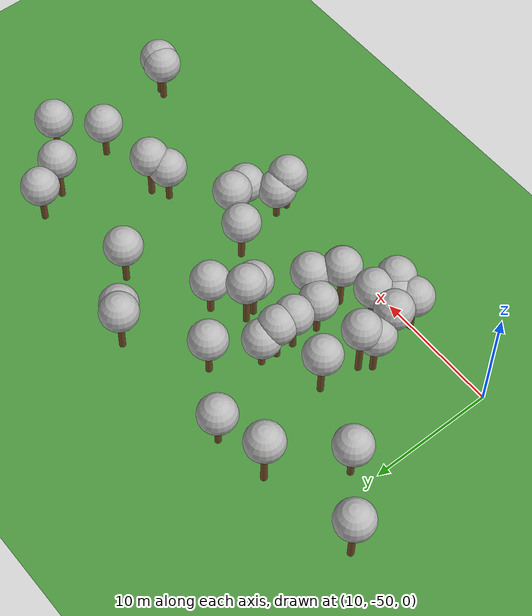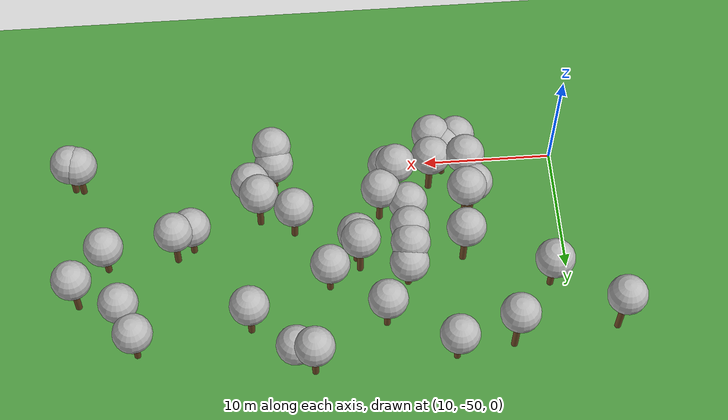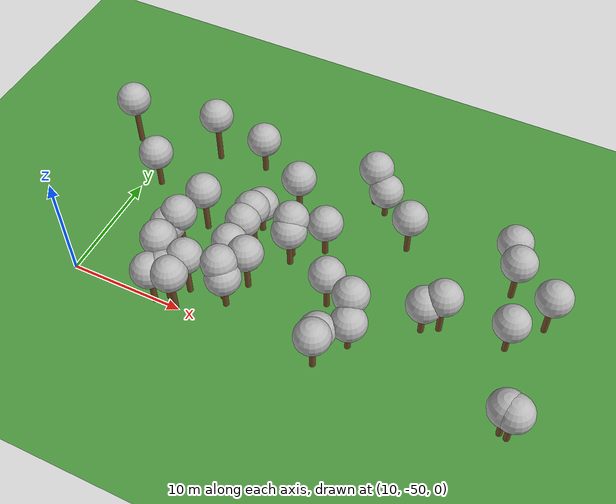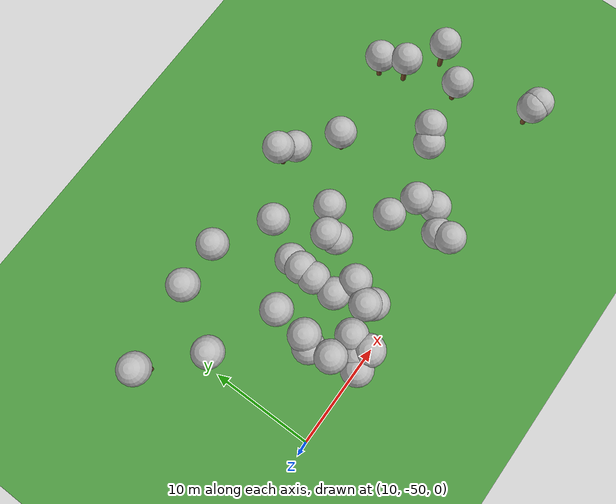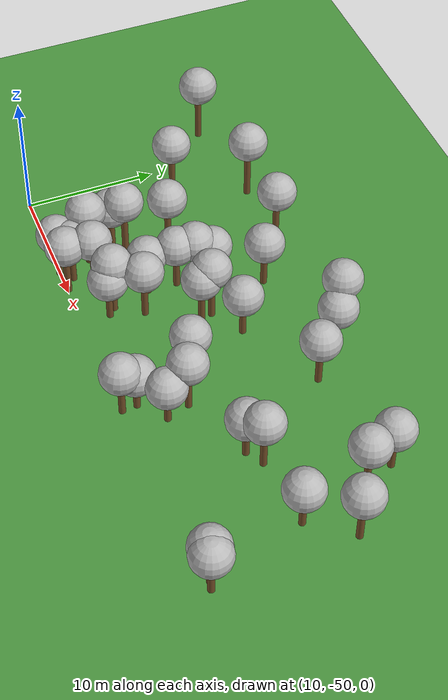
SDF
<sdf version="1.5">
 <world name="default">
  <model name="tree_simple494">
   <static>1</static>
   <link name="link">
    <pose>0 0 0.1 0 -0 0</pose>
    <collision name="collision_trunk">
     <pose>0 0 2 0 -0 0</pose>
     <geometry><cylinder><radius>0.25</radius><length>4</length></cylinder></geometry>
    </collision>
    <collision name="collision_treetop">
     <pose>0 0 5.2 0 -0 0</pose>
     <geometry><sphere><radius>1.5</radius></sphere></geometry>
    </collision>
    <visual name="trunk">
     <pose>0 0 2 0 -0 0</pose>
     <geometry><cylinder><radius>0.25</radius><length>4</length></cylinder></geometry>
     <material>
      <script>
       <uri>model://tree_simple/scripts</uri>
       <uri>model://tree_simple/materials/textures</uri>
       <name>TreeSimple/Trunk</name>
      </script>
     </material>
    </visual>
    <visual name="treetop">
     <pose>0 0 5.2 0 -0 0</pose>
     <geometry><sphere><radius>1.5</radius></sphere></geometry>
     <material>
      <script>
       <uri>model://tree_simple/scripts</uri>
       <uri>model://tree_simple/materials/textures</uri>
       <name>TreeSimple/Treetop</name>
      </script>
     </material>
    </visual>
   </link>
   <pose>39.6521252177 -42.647901406 -1.007992381905501 0 -0 0</pose>
  </model>
  <model name="tree_simple484">
   <static>1</static>
   <link name="link">
    <pose>0 0 0.1 0 -0 0</pose>
    <collision name="collision_trunk">
     <pose>0 0 2 0 -0 0</pose>
     <geometry><cylinder><radius>0.25</radius><length>4</length></cylinder></geometry>
    </collision>
    <collision name="collision_treetop">
     <pose>0 0 5.2 0 -0 0</pose>
     <geometry><sphere><radius>1.5</radius></sphere></geometry>
    </collision>
    <visual name="trunk">
     <pose>0 0 2 0 -0 0</pose>
     <geometry><cylinder><radius>0.25</radius><length>4</length></cylinder></geometry>
     <material>
      <script>
       <uri>model://tree_simple/scripts</uri>
       <uri>model://tree_simple/materials/textures</uri>
       <name>TreeSimple/Trunk</name>
      </script>
     </material>
    </visual>
    <visual name="treetop">
     <pose>0 0 5.2 0 -0 0</pose>
     <geometry><sphere><radius>1.5</radius></sphere></geometry>
     <material>
      <script>
       <uri>model://tree_simple/scripts</uri>
       <uri>model://tree_simple/materials/textures</uri>
       <name>TreeSimple/Treetop</name>
      </script>
     </material>
    </visual>
   </link>
   <pose>19.8605088225 -47.9062304077 -0.7585750219698935 0 -0 0</pose>
  </model>
  <model name="tree_simple464">
   <static>1</static>
   <link name="link">
    <pose>0 0 0.1 0 -0 0</pose>
    <collision name="collision_trunk">
     <pose>0 0 2 0 -0 0</pose>
     <geometry><cylinder><radius>0.25</radius><length>4</length></cylinder></geometry>
    </collision>
    <collision name="collision_treetop">
     <pose>0 0 5.2 0 -0 0</pose>
     <geometry><sphere><radius>1.5</radius></sphere></geometry>
    </collision>
    <visual name="trunk">
     <pose>0 0 2 0 -0 0</pose>
     <geometry><cylinder><radius>0.25</radius><length>4</length></cylinder></geometry>
     <material>
      <script>
       <uri>model://tree_simple/scripts</uri>
       <uri>model://tree_simple/materials/textures</uri>
       <name>TreeSimple/Trunk</name>
      </script>
     </material>
    </visual>
    <visual name="treetop">
     <pose>0 0 5.2 0 -0 0</pose>
     <geometry><sphere><radius>1.5</radius></sphere></geometry>
     <material>
      <script>
       <uri>model://tree_simple/scripts</uri>
       <uri>model://tree_simple/materials/textures</uri>
       <name>TreeSimple/Treetop</name>
      </script>
     </material>
    </visual>
   </link>
   <pose>18.697132214 -49.1923863075 -1.3498016305243221 0 -0 0</pose>
  </model>
  <model name="tree_simple456">
   <static>1</static>
   <link name="link">
    <pose>0 0 0.1 0 -0 0</pose>
    <collision name="collision_trunk">
     <pose>0 0 2 0 -0 0</pose>
     <geometry><cylinder><radius>0.25</radius><length>4</length></cylinder></geometry>
    </collision>
    <collision name="collision_treetop">
     <pose>0 0 5.2 0 -0 0</pose>
     <geometry><sphere><radius>1.5</radius></sphere></geometry>
    </collision>
    <visual name="trunk">
     <pose>0 0 2 0 -0 0</pose>
     <geometry><cylinder><radius>0.25</radius><length>4</length></cylinder></geometry>
     <material>
      <script>
       <uri>model://tree_simple/scripts</uri>
       <uri>model://tree_simple/materials/textures</uri>
       <name>TreeSimple/Trunk</name>
      </script>
     </material>
    </visual>
    <visual name="treetop">
     <pose>0 0 5.2 0 -0 0</pose>
     <geometry><sphere><radius>1.5</radius></sphere></geometry>
     <material>
      <script>
       <uri>model://tree_simple/scripts</uri>
       <uri>model://tree_simple/materials/textures</uri>
       <name>TreeSimple/Treetop</name>
      </script>
     </material>
    </visual>
   </link>
   <pose>23.2076568155 -47.8591592767 -1.7004534067102877 0 -0 0</pose>
  </model>
  <model name="tree_simple430">
   <static>1</static>
   <link name="link">
    <pose>0 0 0.1 0 -0 0</pose>
    <collision name="collision_trunk">
     <pose>0 0 2 0 -0 0</pose>
     <geometry><cylinder><radius>0.25</radius><length>4</length></cylinder></geometry>
    </collision>
    <collision name="collision_treetop">
     <pose>0 0 5.2 0 -0 0</pose>
     <geometry><sphere><radius>1.5</radius></sphere></geometry>
    </collision>
    <visual name="trunk">
     <pose>0 0 2 0 -0 0</pose>
     <geometry><cylinder><radius>0.25</radius><length>4</length></cylinder></geometry>
     <material>
      <script>
       <uri>model://tree_simple/scripts</uri>
       <uri>model://tree_simple/materials/textures</uri>
       <name>TreeSimple/Trunk</name>
      </script>
     </material>
    </visual>
    <visual name="treetop">
     <pose>0 0 5.2 0 -0 0</pose>
     <geometry><sphere><radius>1.5</radius></sphere></geometry>
     <material>
      <script>
       <uri>model://tree_simple/scripts</uri>
       <uri>model://tree_simple/materials/textures</uri>
       <name>TreeSimple/Treetop</name>
      </script>
     </material>
    </visual>
   </link>
   <pose>19.6675265043 -49.8829362896 -0.8286591054720756 0 -0 0</pose>
  </model>
  <model name="tree_simple427">
   <static>1</static>
   <link name="link">
    <pose>0 0 0.1 0 -0 0</pose>
    <collision name="collision_trunk">
     <pose>0 0 2 0 -0 0</pose>
     <geometry><cylinder><radius>0.25</radius><length>4</length></cylinder></geometry>
    </collision>
    <collision name="collision_treetop">
     <pose>0 0 5.2 0 -0 0</pose>
     <geometry><sphere><radius>1.5</radius></sphere></geometry>
    </collision>
    <visual name="trunk">
     <pose>0 0 2 0 -0 0</pose>
     <geometry><cylinder><radius>0.25</radius><length>4</length></cylinder></geometry>
     <material>
      <script>
       <uri>model://tree_simple/scripts</uri>
       <uri>model://tree_simple/materials/textures</uri>
       <name>TreeSimple/Trunk</name>
      </script>
     </material>
    </visual>
    <visual name="treetop">
     <pose>0 0 5.2 0 -0 0</pose>
     <geometry><sphere><radius>1.5</radius></sphere></geometry>
     <material>
      <script>
       <uri>model://tree_simple/scripts</uri>
       <uri>model://tree_simple/materials/textures</uri>
       <name>TreeSimple/Treetop</name>
      </script>
     </material>
    </visual>
   </link>
   <pose>17.8220319496 -41.3749782968 -0.6419685866263911 0 -0 0</pose>
  </model>
  <model name="tree_simple423">
   <static>1</static>
   <link name="link">
    <pose>0 0 0.1 0 -0 0</pose>
    <collision name="collision_trunk">
     <pose>0 0 2 0 -0 0</pose>
     <geometry><cylinder><radius>0.25</radius><length>4</length></cylinder></geometry>
    </collision>
    <collision name="collision_treetop">
     <pose>0 0 5.2 0 -0 0</pose>
     <geometry><sphere><radius>1.5</radius></sphere></geometry>
    </collision>
    <visual name="trunk">
     <pose>0 0 2 0 -0 0</pose>
     <geometry><cylinder><radius>0.25</radius><length>4</length></cylinder></geometry>
     <material>
      <script>
       <uri>model://tree_simple/scripts</uri>
       <uri>model://tree_simple/materials/textures</uri>
       <name>TreeSimple/Trunk</name>
      </script>
     </material>
    </visual>
    <visual name="treetop">
     <pose>0 0 5.2 0 -0 0</pose>
     <geometry><sphere><radius>1.5</radius></sphere></geometry>
     <material>
      <script>
       <uri>model://tree_simple/scripts</uri>
       <uri>model://tree_simple/materials/textures</uri>
       <name>TreeSimple/Treetop</name>
      </script>
     </material>
    </visual>
   </link>
   <pose>22.6666902857 -47.3463091406 -0.7062640140421014 0 -0 0</pose>
  </model>
  <model name="tree_simple422">
   <static>1</static>
   <link name="link">
    <pose>0 0 0.1 0 -0 0</pose>
    <collision name="collision_trunk">
     <pose>0 0 2 0 -0 0</pose>
     <geometry><cylinder><radius>0.25</radius><length>4</length></cylinder></geometry>
    </collision>
    <collision name="collision_treetop">
     <pose>0 0 5.2 0 -0 0</pose>
     <geometry><sphere><radius>1.5</radius></sphere></geometry>
    </collision>
    <visual name="trunk">
     <pose>0 0 2 0 -0 0</pose>
     <geometry><cylinder><radius>0.25</radius><length>4</length></cylinder></geometry>
     <material>
      <script>
       <uri>model://tree_simple/scripts</uri>
       <uri>model://tree_simple/materials/textures</uri>
       <name>TreeSimple/Trunk</name>
      </script>
     </material>
    </visual>
    <visual name="treetop">
     <pose>0 0 5.2 0 -0 0</pose>
     <geometry><sphere><radius>1.5</radius></sphere></geometry>
     <material>
      <script>
       <uri>model://tree_simple/scripts</uri>
       <uri>model://tree_simple/materials/textures</uri>
       <name>TreeSimple/Treetop</name>
      </script>
     </material>
    </visual>
   </link>
   <pose>46.9340594409 -49.3003062786 -1.5132082486776353 0 -0 0</pose>
  </model>
  <model name="tree_simple406">
   <static>1</static>
   <link name="link">
    <pose>0 0 0.1 0 -0 0</pose>
    <collision name="collision_trunk">
     <pose>0 0 2 0 -0 0</pose>
     <geometry><cylinder><radius>0.25</radius><length>4</length></cylinder></geometry>
    </collision>
    <collision name="collision_treetop">
     <pose>0 0 5.2 0 -0 0</pose>
     <geometry><sphere><radius>1.5</radius></sphere></geometry>
    </collision>
    <visual name="trunk">
     <pose>0 0 2 0 -0 0</pose>
     <geometry><cylinder><radius>0.25</radius><length>4</length></cylinder></geometry>
     <material>
      <script>
       <uri>model://tree_simple/scripts</uri>
       <uri>model://tree_simple/materials/textures</uri>
       <name>TreeSimple/Trunk</name>
      </script>
     </material>
    </visual>
    <visual name="treetop">
     <pose>0 0 5.2 0 -0 0</pose>
     <geometry><sphere><radius>1.5</radius></sphere></geometry>
     <material>
      <script>
       <uri>model://tree_simple/scripts</uri>
       <uri>model://tree_simple/materials/textures</uri>
       <name>TreeSimple/Treetop</name>
      </script>
     </material>
    </visual>
   </link>
   <pose>31.8934217089 -48.8403630258 -2.1316052605066784 0 -0 0</pose>
  </model>
  <model name="tree_simple399">
   <static>1</static>
   <link name="link">
    <pose>0 0 0.1 0 -0 0</pose>
    <collision name="collision_trunk">
     <pose>0 0 2 0 -0 0</pose>
     <geometry><cylinder><radius>0.25</radius><length>4</length></cylinder></geometry>
    </collision>
    <collision name="collision_treetop">
     <pose>0 0 5.2 0 -0 0</pose>
     <geometry><sphere><radius>1.5</radius></sphere></geometry>
    </collision>
    <visual name="trunk">
     <pose>0 0 2 0 -0 0</pose>
     <geometry><cylinder><radius>0.25</radius><length>4</length></cylinder></geometry>
     <material>
      <script>
       <uri>model://tree_simple/scripts</uri>
       <uri>model://tree_simple/materials/textures</uri>
       <name>TreeSimple/Trunk</name>
      </script>
     </material>
    </visual>
    <visual name="treetop">
     <pose>0 0 5.2 0 -0 0</pose>
     <geometry><sphere><radius>1.5</radius></sphere></geometry>
     <material>
      <script>
       <uri>model://tree_simple/scripts</uri>
       <uri>model://tree_simple/materials/textures</uri>
       <name>TreeSimple/Treetop</name>
      </script>
     </material>
    </visual>
   </link>
   <pose>28.1463540184 -39.4724503771 -1.5942342966923435 0 -0 0</pose>
  </model>
  <model name="tree_simple362">
   <static>1</static>
   <link name="link">
    <pose>0 0 0.1 0 -0 0</pose>
    <collision name="collision_trunk">
     <pose>0 0 2 0 -0 0</pose>
     <geometry><cylinder><radius>0.25</radius><length>4</length></cylinder></geometry>
    </collision>
    <collision name="collision_treetop">
     <pose>0 0 5.2 0 -0 0</pose>
     <geometry><sphere><radius>1.5</radius></sphere></geometry>
    </collision>
    <visual name="trunk">
     <pose>0 0 2 0 -0 0</pose>
     <geometry><cylinder><radius>0.25</radius><length>4</length></cylinder></geometry>
     <material>
      <script>
       <uri>model://tree_simple/scripts</uri>
       <uri>model://tree_simple/materials/textures</uri>
       <name>TreeSimple/Trunk</name>
      </script>
     </material>
    </visual>
    <visual name="treetop">
     <pose>0 0 5.2 0 -0 0</pose>
     <geometry><sphere><radius>1.5</radius></sphere></geometry>
     <material>
      <script>
       <uri>model://tree_simple/scripts</uri>
       <uri>model://tree_simple/materials/textures</uri>
       <name>TreeSimple/Treetop</name>
      </script>
     </material>
    </visual>
   </link>
   <pose>44.985496552 -42.1503793978 -1.7018055091399555 0 -0 0</pose>
  </model>
  <model name="tree_simple355">
   <static>1</static>
   <link name="link">
    <pose>0 0 0.1 0 -0 0</pose>
    <collision name="collision_trunk">
     <pose>0 0 2 0 -0 0</pose>
     <geometry><cylinder><radius>0.25</radius><length>4</length></cylinder></geometry>
    </collision>
    <collision name="collision_treetop">
     <pose>0 0 5.2 0 -0 0</pose>
     <geometry><sphere><radius>1.5</radius></sphere></geometry>
    </collision>
    <visual name="trunk">
     <pose>0 0 2 0 -0 0</pose>
     <geometry><cylinder><radius>0.25</radius><length>4</length></cylinder></geometry>
     <material>
      <script>
       <uri>model://tree_simple/scripts</uri>
       <uri>model://tree_simple/materials/textures</uri>
       <name>TreeSimple/Trunk</name>
      </script>
     </material>
    </visual>
    <visual name="treetop">
     <pose>0 0 5.2 0 -0 0</pose>
     <geometry><sphere><radius>1.5</radius></sphere></geometry>
     <material>
      <script>
       <uri>model://tree_simple/scripts</uri>
       <uri>model://tree_simple/materials/textures</uri>
       <name>TreeSimple/Treetop</name>
      </script>
     </material>
    </visual>
   </link>
   <pose>25.975286884 -41.7874404901 -1.210287855517367 0 -0 0</pose>
  </model>
  <model name="tree_simple329">
   <static>1</static>
   <link name="link">
    <pose>0 0 0.1 0 -0 0</pose>
    <collision name="collision_trunk">
     <pose>0 0 2 0 -0 0</pose>
     <geometry><cylinder><radius>0.25</radius><length>4</length></cylinder></geometry>
    </collision>
    <collision name="collision_treetop">
     <pose>0 0 5.2 0 -0 0</pose>
     <geometry><sphere><radius>1.5</radius></sphere></geometry>
    </collision>
    <visual name="trunk">
     <pose>0 0 2 0 -0 0</pose>
     <geometry><cylinder><radius>0.25</radius><length>4</length></cylinder></geometry>
     <material>
      <script>
       <uri>model://tree_simple/scripts</uri>
       <uri>model://tree_simple/materials/textures</uri>
       <name>TreeSimple/Trunk</name>
      </script>
     </material>
    </visual>
    <visual name="treetop">
     <pose>0 0 5.2 0 -0 0</pose>
     <geometry><sphere><radius>1.5</radius></sphere></geometry>
     <material>
      <script>
       <uri>model://tree_simple/scripts</uri>
       <uri>model://tree_simple/materials/textures</uri>
       <name>TreeSimple/Treetop</name>
      </script>
     </material>
    </visual>
   </link>
   <pose>22.038430334 -40.7859522783 -1.3749086138204623 0 -0 0</pose>
  </model>
  <model name="tree_simple300">
   <static>1</static>
   <link name="link">
    <pose>0 0 0.1 0 -0 0</pose>
    <collision name="collision_trunk">
     <pose>0 0 2 0 -0 0</pose>
     <geometry><cylinder><radius>0.25</radius><length>4</length></cylinder></geometry>
    </collision>
    <collision name="collision_treetop">
     <pose>0 0 5.2 0 -0 0</pose>
     <geometry><sphere><radius>1.5</radius></sphere></geometry>
    </collision>
    <visual name="trunk">
     <pose>0 0 2 0 -0 0</pose>
     <geometry><cylinder><radius>0.25</radius><length>4</length></cylinder></geometry>
     <material>
      <script>
       <uri>model://tree_simple/scripts</uri>
       <uri>model://tree_simple/materials/textures</uri>
       <name>TreeSimple/Trunk</name>
      </script>
     </material>
    </visual>
    <visual name="treetop">
     <pose>0 0 5.2 0 -0 0</pose>
     <geometry><sphere><radius>1.5</radius></sphere></geometry>
     <material>
      <script>
       <uri>model://tree_simple/scripts</uri>
       <uri>model://tree_simple/materials/textures</uri>
       <name>TreeSimple/Treetop</name>
      </script>
     </material>
    </visual>
   </link>
   <pose>34.2893754597 -36.2522401159 -1.2069792863695539 0 -0 0</pose>
  </model>
  <model name="tree_simple281">
   <static>1</static>
   <link name="link">
    <pose>0 0 0.1 0 -0 0</pose>
    <collision name="collision_trunk">
     <pose>0 0 2 0 -0 0</pose>
     <geometry><cylinder><radius>0.25</radius><length>4</length></cylinder></geometry>
    </collision>
    <collision name="collision_treetop">
     <pose>0 0 5.2 0 -0 0</pose>
     <geometry><sphere><radius>1.5</radius></sphere></geometry>
    </collision>
    <visual name="trunk">
     <pose>0 0 2 0 -0 0</pose>
     <geometry><cylinder><radius>0.25</radius><length>4</length></cylinder></geometry>
     <material>
      <script>
       <uri>model://tree_simple/scripts</uri>
       <uri>model://tree_simple/materials/textures</uri>
       <name>TreeSimple/Trunk</name>
      </script>
     </material>
    </visual>
    <visual name="treetop">
     <pose>0 0 5.2 0 -0 0</pose>
     <geometry><sphere><radius>1.5</radius></sphere></geometry>
     <material>
      <script>
       <uri>model://tree_simple/scripts</uri>
       <uri>model://tree_simple/materials/textures</uri>
       <name>TreeSimple/Treetop</name>
      </script>
     </material>
    </visual>
   </link>
   <pose>17.7631793605 -49.9798329039 -1.3397394094577435 0 -0 0</pose>
  </model>
  <model name="tree_simple280">
   <static>1</static>
   <link name="link">
    <pose>0 0 0.1 0 -0 0</pose>
    <collision name="collision_trunk">
     <pose>0 0 2 0 -0 0</pose>
     <geometry><cylinder><radius>0.25</radius><length>4</length></cylinder></geometry>
    </collision>
    <collision name="collision_treetop">
     <pose>0 0 5.2 0 -0 0</pose>
     <geometry><sphere><radius>1.5</radius></sphere></geometry>
    </collision>
    <visual name="trunk">
     <pose>0 0 2 0 -0 0</pose>
     <geometry><cylinder><radius>0.25</radius><length>4</length></cylinder></geometry>
     <material>
      <script>
       <uri>model://tree_simple/scripts</uri>
       <uri>model://tree_simple/materials/textures</uri>
       <name>TreeSimple/Trunk</name>
      </script>
     </material>
    </visual>
    <visual name="treetop">
     <pose>0 0 5.2 0 -0 0</pose>
     <geometry><sphere><radius>1.5</radius></sphere></geometry>
     <material>
      <script>
       <uri>model://tree_simple/scripts</uri>
       <uri>model://tree_simple/materials/textures</uri>
       <name>TreeSimple/Treetop</name>
      </script>
     </material>
    </visual>
   </link>
   <pose>42.8499474232 -34.7520527621 -1.5146082432369 0 -0 0</pose>
  </model>
  <model name="tree_simple261">
   <static>1</static>
   <link name="link">
    <pose>0 0 0.1 0 -0 0</pose>
    <collision name="collision_trunk">
     <pose>0 0 2 0 -0 0</pose>
     <geometry><cylinder><radius>0.25</radius><length>4</length></cylinder></geometry>
    </collision>
    <collision name="collision_treetop">
     <pose>0 0 5.2 0 -0 0</pose>
     <geometry><sphere><radius>1.5</radius></sphere></geometry>
    </collision>
    <visual name="trunk">
     <pose>0 0 2 0 -0 0</pose>
     <geometry><cylinder><radius>0.25</radius><length>4</length></cylinder></geometry>
     <material>
      <script>
       <uri>model://tree_simple/scripts</uri>
       <uri>model://tree_simple/materials/textures</uri>
       <name>TreeSimple/Trunk</name>
      </script>
     </material>
    </visual>
    <visual name="treetop">
     <pose>0 0 5.2 0 -0 0</pose>
     <geometry><sphere><radius>1.5</radius></sphere></geometry>
     <material>
      <script>
       <uri>model://tree_simple/scripts</uri>
       <uri>model://tree_simple/materials/textures</uri>
       <name>TreeSimple/Treetop</name>
      </script>
     </material>
    </visual>
   </link>
   <pose>33.7827414367 -47.2764136507 -2.028757432966681 0 -0 0</pose>
  </model>
  <model name="tree_simple233">
   <static>1</static>
   <link name="link">
    <pose>0 0 0.1 0 -0 0</pose>
    <collision name="collision_trunk">
     <pose>0 0 2 0 -0 0</pose>
     <geometry><cylinder><radius>0.25</radius><length>4</length></cylinder></geometry>
    </collision>
    <collision name="collision_treetop">
     <pose>0 0 5.2 0 -0 0</pose>
     <geometry><sphere><radius>1.5</radius></sphere></geometry>
    </collision>
    <visual name="trunk">
     <pose>0 0 2 0 -0 0</pose>
     <geometry><cylinder><radius>0.25</radius><length>4</length></cylinder></geometry>
     <material>
      <script>
       <uri>model://tree_simple/scripts</uri>
       <uri>model://tree_simple/materials/textures</uri>
       <name>TreeSimple/Trunk</name>
      </script>
     </material>
    </visual>
    <visual name="treetop">
     <pose>0 0 5.2 0 -0 0</pose>
     <geometry><sphere><radius>1.5</radius></sphere></geometry>
     <material>
      <script>
       <uri>model://tree_simple/scripts</uri>
       <uri>model://tree_simple/materials/textures</uri>
       <name>TreeSimple/Treetop</name>
      </script>
     </material>
    </visual>
   </link>
   <pose>21.929125889 -44.4760714013 -1.6212439924348268 0 -0 0</pose>
  </model>
  <model name="tree_simple225">
   <static>1</static>
   <link name="link">
    <pose>0 0 0.1 0 -0 0</pose>
    <collision name="collision_trunk">
     <pose>0 0 2 0 -0 0</pose>
     <geometry><cylinder><radius>0.25</radius><length>4</length></cylinder></geometry>
    </collision>
    <collision name="collision_treetop">
     <pose>0 0 5.2 0 -0 0</pose>
     <geometry><sphere><radius>1.5</radius></sphere></geometry>
    </collision>
    <visual name="trunk">
     <pose>0 0 2 0 -0 0</pose>
     <geometry><cylinder><radius>0.25</radius><length>4</length></cylinder></geometry>
     <material>
      <script>
       <uri>model://tree_simple/scripts</uri>
       <uri>model://tree_simple/materials/textures</uri>
       <name>TreeSimple/Trunk</name>
      </script>
     </material>
    </visual>
    <visual name="treetop">
     <pose>0 0 5.2 0 -0 0</pose>
     <geometry><sphere><radius>1.5</radius></sphere></geometry>
     <material>
      <script>
       <uri>model://tree_simple/scripts</uri>
       <uri>model://tree_simple/materials/textures</uri>
       <name>TreeSimple/Treetop</name>
      </script>
     </material>
    </visual>
   </link>
   <pose>30.586439973 -44.3528824328 -1.2935662439790152 0 -0 0</pose>
  </model>
  <model name="tree_simple215">
   <static>1</static>
   <link name="link">
    <pose>0 0 0.1 0 -0 0</pose>
    <collision name="collision_trunk">
     <pose>0 0 2 0 -0 0</pose>
     <geometry><cylinder><radius>0.25</radius><length>4</length></cylinder></geometry>
    </collision>
    <collision name="collision_treetop">
     <pose>0 0 5.2 0 -0 0</pose>
     <geometry><sphere><radius>1.5</radius></sphere></geometry>
    </collision>
    <visual name="trunk">
     <pose>0 0 2 0 -0 0</pose>
     <geometry><cylinder><radius>0.25</radius><length>4</length></cylinder></geometry>
     <material>
      <script>
       <uri>model://tree_simple/scripts</uri>
       <uri>model://tree_simple/materials/textures</uri>
       <name>TreeSimple/Trunk</name>
      </script>
     </material>
    </visual>
    <visual name="treetop">
     <pose>0 0 5.2 0 -0 0</pose>
     <geometry><sphere><radius>1.5</radius></sphere></geometry>
     <material>
      <script>
       <uri>model://tree_simple/scripts</uri>
       <uri>model://tree_simple/materials/textures</uri>
       <name>TreeSimple/Treetop</name>
      </script>
     </material>
    </visual>
   </link>
   <pose>6.8108440726 -34.7298391892 -0.27884321710814985 0 -0 0</pose>
  </model>
  <model name="tree_simple207">
   <static>1</static>
   <link name="link">
    <pose>0 0 0.1 0 -0 0</pose>
    <collision name="collision_trunk">
     <pose>0 0 2 0 -0 0</pose>
     <geometry><cylinder><radius>0.25</radius><length>4</length></cylinder></geometry>
    </collision>
    <collision name="collision_treetop">
     <pose>0 0 5.2 0 -0 0</pose>
     <geometry><sphere><radius>1.5</radius></sphere></geometry>
    </collision>
    <visual name="trunk">
     <pose>0 0 2 0 -0 0</pose>
     <geometry><cylinder><radius>0.25</radius><length>4</length></cylinder></geometry>
     <material>
      <script>
       <uri>model://tree_simple/scripts</uri>
       <uri>model://tree_simple/materials/textures</uri>
       <name>TreeSimple/Trunk</name>
      </script>
     </material>
    </visual>
    <visual name="treetop">
     <pose>0 0 5.2 0 -0 0</pose>
     <geometry><sphere><radius>1.5</radius></sphere></geometry>
     <material>
      <script>
       <uri>model://tree_simple/scripts</uri>
       <uri>model://tree_simple/materials/textures</uri>
       <name>TreeSimple/Treetop</name>
      </script>
     </material>
    </visual>
   </link>
   <pose>29.7171513821 -32.5331350523 -0.9764253071942636 0 -0 0</pose>
  </model>
  <model name="tree_simple202">
   <static>1</static>
   <link name="link">
    <pose>0 0 0.1 0 -0 0</pose>
    <collision name="collision_trunk">
     <pose>0 0 2 0 -0 0</pose>
     <geometry><cylinder><radius>0.25</radius><length>4</length></cylinder></geometry>
    </collision>
    <collision name="collision_treetop">
     <pose>0 0 5.2 0 -0 0</pose>
     <geometry><sphere><radius>1.5</radius></sphere></geometry>
    </collision>
    <visual name="trunk">
     <pose>0 0 2 0 -0 0</pose>
     <geometry><cylinder><radius>0.25</radius><length>4</length></cylinder></geometry>
     <material>
      <script>
       <uri>model://tree_simple/scripts</uri>
       <uri>model://tree_simple/materials/textures</uri>
       <name>TreeSimple/Trunk</name>
      </script>
     </material>
    </visual>
    <visual name="treetop">
     <pose>0 0 5.2 0 -0 0</pose>
     <geometry><sphere><radius>1.5</radius></sphere></geometry>
     <material>
      <script>
       <uri>model://tree_simple/scripts</uri>
       <uri>model://tree_simple/materials/textures</uri>
       <name>TreeSimple/Treetop</name>
      </script>
     </material>
    </visual>
   </link>
   <pose>33.1651643467 -45.5260416914 -0.965114586104809 0 -0 0</pose>
  </model>
  <model name="tree_simple182">
   <static>1</static>
   <link name="link">
    <pose>0 0 0.1 0 -0 0</pose>
    <collision name="collision_trunk">
     <pose>0 0 2 0 -0 0</pose>
     <geometry><cylinder><radius>0.25</radius><length>4</length></cylinder></geometry>
    </collision>
    <collision name="collision_treetop">
     <pose>0 0 5.2 0 -0 0</pose>
     <geometry><sphere><radius>1.5</radius></sphere></geometry>
    </collision>
    <visual name="trunk">
     <pose>0 0 2 0 -0 0</pose>
     <geometry><cylinder><radius>0.25</radius><length>4</length></cylinder></geometry>
     <material>
      <script>
       <uri>model://tree_simple/scripts</uri>
       <uri>model://tree_simple/materials/textures</uri>
       <name>TreeSimple/Trunk</name>
      </script>
     </material>
    </visual>
    <visual name="treetop">
     <pose>0 0 5.2 0 -0 0</pose>
     <geometry><sphere><radius>1.5</radius></sphere></geometry>
     <material>
      <script>
       <uri>model://tree_simple/scripts</uri>
       <uri>model://tree_simple/materials/textures</uri>
       <name>TreeSimple/Treetop</name>
      </script>
     </material>
    </visual>
   </link>
   <pose>31.0475626231 -33.3896196972 -2.3394273494019178 0 -0 0</pose>
  </model>
  <model name="tree_simple173">
   <static>1</static>
   <link name="link">
    <pose>0 0 0.1 0 -0 0</pose>
    <collision name="collision_trunk">
     <pose>0 0 2 0 -0 0</pose>
     <geometry><cylinder><radius>0.25</radius><length>4</length></cylinder></geometry>
    </collision>
    <collision name="collision_treetop">
     <pose>0 0 5.2 0 -0 0</pose>
     <geometry><sphere><radius>1.5</radius></sphere></geometry>
    </collision>
    <visual name="trunk">
     <pose>0 0 2 0 -0 0</pose>
     <geometry><cylinder><radius>0.25</radius><length>4</length></cylinder></geometry>
     <material>
      <script>
       <uri>model://tree_simple/scripts</uri>
       <uri>model://tree_simple/materials/textures</uri>
       <name>TreeSimple/Trunk</name>
      </script>
     </material>
    </visual>
    <visual name="treetop">
     <pose>0 0 5.2 0 -0 0</pose>
     <geometry><sphere><radius>1.5</radius></sphere></geometry>
     <material>
      <script>
       <uri>model://tree_simple/scripts</uri>
       <uri>model://tree_simple/materials/textures</uri>
       <name>TreeSimple/Treetop</name>
      </script>
     </material>
    </visual>
   </link>
   <pose>43.8187371286 -37.037678565 -1.000762857265166 0 -0 0</pose>
  </model>
  <model name="tree_simple169">
   <static>1</static>
   <link name="link">
    <pose>0 0 0.1 0 -0 0</pose>
    <collision name="collision_trunk">
     <pose>0 0 2 0 -0 0</pose>
     <geometry><cylinder><radius>0.25</radius><length>4</length></cylinder></geometry>
    </collision>
    <collision name="collision_treetop">
     <pose>0 0 5.2 0 -0 0</pose>
     <geometry><sphere><radius>1.5</radius></sphere></geometry>
    </collision>
    <visual name="trunk">
     <pose>0 0 2 0 -0 0</pose>
     <geometry><cylinder><radius>0.25</radius><length>4</length></cylinder></geometry>
     <material>
      <script>
       <uri>model://tree_simple/scripts</uri>
       <uri>model://tree_simple/materials/textures</uri>
       <name>TreeSimple/Trunk</name>
      </script>
     </material>
    </visual>
    <visual name="treetop">
     <pose>0 0 5.2 0 -0 0</pose>
     <geometry><sphere><radius>1.5</radius></sphere></geometry>
     <material>
      <script>
       <uri>model://tree_simple/scripts</uri>
       <uri>model://tree_simple/materials/textures</uri>
       <name>TreeSimple/Treetop</name>
      </script>
     </material>
    </visual>
   </link>
   <pose>25.7710646255 -40.9498520998 -0.6311263945193154 0 -0 0</pose>
  </model>
  <model name="tree_simple167">
   <static>1</static>
   <link name="link">
    <pose>0 0 0.1 0 -0 0</pose>
    <collision name="collision_trunk">
     <pose>0 0 2 0 -0 0</pose>
     <geometry><cylinder><radius>0.25</radius><length>4</length></cylinder></geometry>
    </collision>
    <collision name="collision_treetop">
     <pose>0 0 5.2 0 -0 0</pose>
     <geometry><sphere><radius>1.5</radius></sphere></geometry>
    </collision>
    <visual name="trunk">
     <pose>0 0 2 0 -0 0</pose>
     <geometry><cylinder><radius>0.25</radius><length>4</length></cylinder></geometry>
     <material>
      <script>
       <uri>model://tree_simple/scripts</uri>
       <uri>model://tree_simple/materials/textures</uri>
       <name>TreeSimple/Trunk</name>
      </script>
     </material>
    </visual>
    <visual name="treetop">
     <pose>0 0 5.2 0 -0 0</pose>
     <geometry><sphere><radius>1.5</radius></sphere></geometry>
     <material>
      <script>
       <uri>model://tree_simple/scripts</uri>
       <uri>model://tree_simple/materials/textures</uri>
       <name>TreeSimple/Treetop</name>
      </script>
     </material>
    </visual>
   </link>
   <pose>14.7724548693 -33.6841584831 -0.0 0 -0 0</pose>
  </model>
  <model name="tree_simple153">
   <static>1</static>
   <link name="link">
    <pose>0 0 0.1 0 -0 0</pose>
    <collision name="collision_trunk">
     <pose>0 0 2 0 -0 0</pose>
     <geometry><cylinder><radius>0.25</radius><length>4</length></cylinder></geometry>
    </collision>
    <collision name="collision_treetop">
     <pose>0 0 5.2 0 -0 0</pose>
     <geometry><sphere><radius>1.5</radius></sphere></geometry>
    </collision>
    <visual name="trunk">
     <pose>0 0 2 0 -0 0</pose>
     <geometry><cylinder><radius>0.25</radius><length>4</length></cylinder></geometry>
     <material>
      <script>
       <uri>model://tree_simple/scripts</uri>
       <uri>model://tree_simple/materials/textures</uri>
       <name>TreeSimple/Trunk</name>
      </script>
     </material>
    </visual>
    <visual name="treetop">
     <pose>0 0 5.2 0 -0 0</pose>
     <geometry><sphere><radius>1.5</radius></sphere></geometry>
     <material>
      <script>
       <uri>model://tree_simple/scripts</uri>
       <uri>model://tree_simple/materials/textures</uri>
       <name>TreeSimple/Treetop</name>
      </script>
     </material>
    </visual>
   </link>
   <pose>24.0970841452 -36.1585269214 -1.332160143924452 0 -0 0</pose>
  </model>
  <model name="tree_simple139">
   <static>1</static>
   <link name="link">
    <pose>0 0 0.1 0 -0 0</pose>
    <collision name="collision_trunk">
     <pose>0 0 2 0 -0 0</pose>
     <geometry><cylinder><radius>0.25</radius><length>4</length></cylinder></geometry>
    </collision>
    <collision name="collision_treetop">
     <pose>0 0 5.2 0 -0 0</pose>
     <geometry><sphere><radius>1.5</radius></sphere></geometry>
    </collision>
    <visual name="trunk">
     <pose>0 0 2 0 -0 0</pose>
     <geometry><cylinder><radius>0.25</radius><length>4</length></cylinder></geometry>
     <material>
      <script>
       <uri>model://tree_simple/scripts</uri>
       <uri>model://tree_simple/materials/textures</uri>
       <name>TreeSimple/Trunk</name>
      </script>
     </material>
    </visual>
    <visual name="treetop">
     <pose>0 0 5.2 0 -0 0</pose>
     <geometry><sphere><radius>1.5</radius></sphere></geometry>
     <material>
      <script>
       <uri>model://tree_simple/scripts</uri>
       <uri>model://tree_simple/materials/textures</uri>
       <name>TreeSimple/Treetop</name>
      </script>
     </material>
    </visual>
   </link>
   <pose>16.853661786 -45.5057571818 -1.0335743971653366 0 -0 0</pose>
  </model>
  <model name="tree_simple136">
   <static>1</static>
   <link name="link">
    <pose>0 0 0.1 0 -0 0</pose>
    <collision name="collision_trunk">
     <pose>0 0 2 0 -0 0</pose>
     <geometry><cylinder><radius>0.25</radius><length>4</length></cylinder></geometry>
    </collision>
    <collision name="collision_treetop">
     <pose>0 0 5.2 0 -0 0</pose>
     <geometry><sphere><radius>1.5</radius></sphere></geometry>
    </collision>
    <visual name="trunk">
     <pose>0 0 2 0 -0 0</pose>
     <geometry><cylinder><radius>0.25</radius><length>4</length></cylinder></geometry>
     <material>
      <script>
       <uri>model://tree_simple/scripts</uri>
       <uri>model://tree_simple/materials/textures</uri>
       <name>TreeSimple/Trunk</name>
      </script>
     </material>
    </visual>
    <visual name="treetop">
     <pose>0 0 5.2 0 -0 0</pose>
     <geometry><sphere><radius>1.5</radius></sphere></geometry>
     <material>
      <script>
       <uri>model://tree_simple/scripts</uri>
       <uri>model://tree_simple/materials/textures</uri>
       <name>TreeSimple/Treetop</name>
      </script>
     </material>
    </visual>
   </link>
   <pose>47.5460904113 -49.4529023421 -1.478636667145315 0 -0 0</pose>
  </model>
  <model name="tree_simple123">
   <static>1</static>
   <link name="link">
    <pose>0 0 0.1 0 -0 0</pose>
    <collision name="collision_trunk">
     <pose>0 0 2 0 -0 0</pose>
     <geometry><cylinder><radius>0.25</radius><length>4</length></cylinder></geometry>
    </collision>
    <collision name="collision_treetop">
     <pose>0 0 5.2 0 -0 0</pose>
     <geometry><sphere><radius>1.5</radius></sphere></geometry>
    </collision>
    <visual name="trunk">
     <pose>0 0 2 0 -0 0</pose>
     <geometry><cylinder><radius>0.25</radius><length>4</length></cylinder></geometry>
     <material>
      <script>
       <uri>model://tree_simple/scripts</uri>
       <uri>model://tree_simple/materials/textures</uri>
       <name>TreeSimple/Trunk</name>
      </script>
     </material>
    </visual>
    <visual name="treetop">
     <pose>0 0 5.2 0 -0 0</pose>
     <geometry><sphere><radius>1.5</radius></sphere></geometry>
     <material>
      <script>
       <uri>model://tree_simple/scripts</uri>
       <uri>model://tree_simple/materials/textures</uri>
       <name>TreeSimple/Treetop</name>
      </script>
     </material>
    </visual>
   </link>
   <pose>17.3351285606 -47.5264442332 -0.21886557877922486 0 -0 0</pose>
  </model>
  <model name="tree_simple115">
   <static>1</static>
   <link name="link">
    <pose>0 0 0.1 0 -0 0</pose>
    <collision name="collision_trunk">
     <pose>0 0 2 0 -0 0</pose>
     <geometry><cylinder><radius>0.25</radius><length>4</length></cylinder></geometry>
    </collision>
    <collision name="collision_treetop">
     <pose>0 0 5.2 0 -0 0</pose>
     <geometry><sphere><radius>1.5</radius></sphere></geometry>
    </collision>
    <visual name="trunk">
     <pose>0 0 2 0 -0 0</pose>
     <geometry><cylinder><radius>0.25</radius><length>4</length></cylinder></geometry>
     <material>
      <script>
       <uri>model://tree_simple/scripts</uri>
       <uri>model://tree_simple/materials/textures</uri>
       <name>TreeSimple/Trunk</name>
      </script>
     </material>
    </visual>
    <visual name="treetop">
     <pose>0 0 5.2 0 -0 0</pose>
     <geometry><sphere><radius>1.5</radius></sphere></geometry>
     <material>
      <script>
       <uri>model://tree_simple/scripts</uri>
       <uri>model://tree_simple/materials/textures</uri>
       <name>TreeSimple/Treetop</name>
      </script>
     </material>
    </visual>
   </link>
   <pose>23.9238582862 -45.4027076844 -1.0520820705162608 0 -0 0</pose>
  </model>
  <model name="tree_simple96">
   <static>1</static>
   <link name="link">
    <pose>0 0 0.1 0 -0 0</pose>
    <collision name="collision_trunk">
     <pose>0 0 2 0 -0 0</pose>
     <geometry><cylinder><radius>0.25</radius><length>4</length></cylinder></geometry>
    </collision>
    <collision name="collision_treetop">
     <pose>0 0 5.2 0 -0 0</pose>
     <geometry><sphere><radius>1.5</radius></sphere></geometry>
    </collision>
    <visual name="trunk">
     <pose>0 0 2 0 -0 0</pose>
     <geometry><cylinder><radius>0.25</radius><length>4</length></cylinder></geometry>
     <material>
      <script>
       <uri>model://tree_simple/scripts</uri>
       <uri>model://tree_simple/materials/textures</uri>
       <name>TreeSimple/Trunk</name>
      </script>
     </material>
    </visual>
    <visual name="treetop">
     <pose>0 0 5.2 0 -0 0</pose>
     <geometry><sphere><radius>1.5</radius></sphere></geometry>
     <material>
      <script>
       <uri>model://tree_simple/scripts</uri>
       <uri>model://tree_simple/materials/textures</uri>
       <name>TreeSimple/Treetop</name>
      </script>
     </material>
    </visual>
   </link>
   <pose>17.4748828609 -44.6574809929 -0.1894853514187198 0 -0 0</pose>
  </model>
  <model name="tree_simple56">
   <static>1</static>
   <link name="link">
    <pose>0 0 0.1 0 -0 0</pose>
    <collision name="collision_trunk">
     <pose>0 0 2 0 -0 0</pose>
     <geometry><cylinder><radius>0.25</radius><length>4</length></cylinder></geometry>
    </collision>
    <collision name="collision_treetop">
     <pose>0 0 5.2 0 -0 0</pose>
     <geometry><sphere><radius>1.5</radius></sphere></geometry>
    </collision>
    <visual name="trunk">
     <pose>0 0 2 0 -0 0</pose>
     <geometry><cylinder><radius>0.25</radius><length>4</length></cylinder></geometry>
     <material>
      <script>
       <uri>model://tree_simple/scripts</uri>
       <uri>model://tree_simple/materials/textures</uri>
       <name>TreeSimple/Trunk</name>
      </script>
     </material>
    </visual>
    <visual name="treetop">
     <pose>0 0 5.2 0 -0 0</pose>
     <geometry><sphere><radius>1.5</radius></sphere></geometry>
     <material>
      <script>
       <uri>model://tree_simple/scripts</uri>
       <uri>model://tree_simple/materials/textures</uri>
       <name>TreeSimple/Treetop</name>
      </script>
     </material>
    </visual>
   </link>
   <pose>38.4020388854 -43.3995733347 -1.7090486208529374 0 -0 0</pose>
  </model>
  <model name="tree_simple52">
   <static>1</static>
   <link name="link">
    <pose>0 0 0.1 0 -0 0</pose>
    <collision name="collision_trunk">
     <pose>0 0 2 0 -0 0</pose>
     <geometry><cylinder><radius>0.25</radius><length>4</length></cylinder></geometry>
    </collision>
    <collision name="collision_treetop">
     <pose>0 0 5.2 0 -0 0</pose>
     <geometry><sphere><radius>1.5</radius></sphere></geometry>
    </collision>
    <visual name="trunk">
     <pose>0 0 2 0 -0 0</pose>
     <geometry><cylinder><radius>0.25</radius><length>4</length></cylinder></geometry>
     <material>
      <script>
       <uri>model://tree_simple/scripts</uri>
       <uri>model://tree_simple/materials/textures</uri>
       <name>TreeSimple/Trunk</name>
      </script>
     </material>
    </visual>
    <visual name="treetop">
     <pose>0 0 5.2 0 -0 0</pose>
     <geometry><sphere><radius>1.5</radius></sphere></geometry>
     <material>
      <script>
       <uri>model://tree_simple/scripts</uri>
       <uri>model://tree_simple/materials/textures</uri>
       <name>TreeSimple/Treetop</name>
      </script>
     </material>
    </visual>
   </link>
   <pose>22.195457895 -39.5072380211 -2.1241419981870617 0 -0 0</pose>
  </model>
  <model name="tree_simple42">
   <static>1</static>
   <link name="link">
    <pose>0 0 0.1 0 -0 0</pose>
    <collision name="collision_trunk">
     <pose>0 0 2 0 -0 0</pose>
     <geometry><cylinder><radius>0.25</radius><length>4</length></cylinder></geometry>
    </collision>
    <collision name="collision_treetop">
     <pose>0 0 5.2 0 -0 0</pose>
     <geometry><sphere><radius>1.5</radius></sphere></geometry>
    </collision>
    <visual name="trunk">
     <pose>0 0 2 0 -0 0</pose>
     <geometry><cylinder><radius>0.25</radius><length>4</length></cylinder></geometry>
     <material>
      <script>
       <uri>model://tree_simple/scripts</uri>
       <uri>model://tree_simple/materials/textures</uri>
       <name>TreeSimple/Trunk</name>
      </script>
     </material>
    </visual>
    <visual name="treetop">
     <pose>0 0 5.2 0 -0 0</pose>
     <geometry><sphere><radius>1.5</radius></sphere></geometry>
     <material>
      <script>
       <uri>model://tree_simple/scripts</uri>
       <uri>model://tree_simple/materials/textures</uri>
       <name>TreeSimple/Treetop</name>
      </script>
     </material>
    </visual>
   </link>
   <pose>19.1195153572 -33.0751098478 -1.600114867357414 0 -0 0</pose>
  </model>
  <model name="tree_simple22">
   <static>1</static>
   <link name="link">
    <pose>0 0 0.1 0 -0 0</pose>
    <collision name="collision_trunk">
     <pose>0 0 2 0 -0 0</pose>
     <geometry><cylinder><radius>0.25</radius><length>4</length></cylinder></geometry>
    </collision>
    <collision name="collision_treetop">
     <pose>0 0 5.2 0 -0 0</pose>
     <geometry><sphere><radius>1.5</radius></sphere></geometry>
    </collision>
    <visual name="trunk">
     <pose>0 0 2 0 -0 0</pose>
     <geometry><cylinder><radius>0.25</radius><length>4</length></cylinder></geometry>
     <material>
      <script>
       <uri>model://tree_simple/scripts</uri>
       <uri>model://tree_simple/materials/textures</uri>
       <name>TreeSimple/Trunk</name>
      </script>
     </material>
    </visual>
    <visual name="treetop">
     <pose>0 0 5.2 0 -0 0</pose>
     <geometry><sphere><radius>1.5</radius></sphere></geometry>
     <material>
      <script>
       <uri>model://tree_simple/scripts</uri>
       <uri>model://tree_simple/materials/textures</uri>
       <name>TreeSimple/Treetop</name>
      </script>
     </material>
    </visual>
   </link>
   <pose>11.4199673575 -38.694355257 -1.441311637728018 0 -0 0</pose>
  </model>
  <model name="tree_simple16">
   <static>1</static>
   <link name="link">
    <pose>0 0 0.1 0 -0 0</pose>
    <collision name="collision_trunk">
     <pose>0 0 2 0 -0 0</pose>
     <geometry><cylinder><radius>0.25</radius><length>4</length></cylinder></geometry>
    </collision>
    <collision name="collision_treetop">
     <pose>0 0 5.2 0 -0 0</pose>
     <geometry><sphere><radius>1.5</radius></sphere></geometry>
    </collision>
    <visual name="trunk">
     <pose>0 0 2 0 -0 0</pose>
     <geometry><cylinder><radius>0.25</radius><length>4</length></cylinder></geometry>
     <material>
      <script>
       <uri>model://tree_simple/scripts</uri>
       <uri>model://tree_simple/materials/textures</uri>
       <name>TreeSimple/Trunk</name>
      </script>
     </material>
    </visual>
    <visual name="treetop">
     <pose>0 0 5.2 0 -0 0</pose>
     <geometry><sphere><radius>1.5</radius></sphere></geometry>
     <material>
      <script>
       <uri>model://tree_simple/scripts</uri>
       <uri>model://tree_simple/materials/textures</uri>
       <name>TreeSimple/Treetop</name>
      </script>
     </material>
    </visual>
   </link>
   <pose>32.0026070431 -49.9548957823 -1.3734869841818822 0 -0 0</pose>
  </model>
  <model name="tree_simple13">
   <static>1</static>
   <link name="link">
    <pose>0 0 0.1 0 -0 0</pose>
    <collision name="collision_trunk">
     <pose>0 0 2 0 -0 0</pose>
     <geometry><cylinder><radius>0.25</radius><length>4</length></cylinder></geometry>
    </collision>
    <collision name="collision_treetop">
     <pose>0 0 5.2 0 -0 0</pose>
     <geometry><sphere><radius>1.5</radius></sphere></geometry>
    </collision>
    <visual name="trunk">
     <pose>0 0 2 0 -0 0</pose>
     <geometry><cylinder><radius>0.25</radius><length>4</length></cylinder></geometry>
     <material>
      <script>
       <uri>model://tree_simple/scripts</uri>
       <uri>model://tree_simple/materials/textures</uri>
       <name>TreeSimple/Trunk</name>
      </script>
     </material>
    </visual>
    <visual name="treetop">
     <pose>0 0 5.2 0 -0 0</pose>
     <geometry><sphere><radius>1.5</radius></sphere></geometry>
     <material>
      <script>
       <uri>model://tree_simple/scripts</uri>
       <uri>model://tree_simple/materials/textures</uri>
       <name>TreeSimple/Treetop</name>
      </script>
     </material>
    </visual>
   </link>
   <pose>21.9742431084 -42.2362921442 -1.3883463780420782 0 -0 0</pose>
  </model>
  <model name="tree_simple5">
   <static>1</static>
   <link name="link">
    <pose>0 0 0.1 0 -0 0</pose>
    <collision name="collision_trunk">
     <pose>0 0 2 0 -0 0</pose>
     <geometry><cylinder><radius>0.25</radius><length>4</length></cylinder></geometry>
    </collision>
    <collision name="collision_treetop">
     <pose>0 0 5.2 0 -0 0</pose>
     <geometry><sphere><radius>1.5</radius></sphere></geometry>
    </collision>
    <visual name="trunk">
     <pose>0 0 2 0 -0 0</pose>
     <geometry><cylinder><radius>0.25</radius><length>4</length></cylinder></geometry>
     <material>
      <script>
       <uri>model://tree_simple/scripts</uri>
       <uri>model://tree_simple/materials/textures</uri>
       <name>TreeSimple/Trunk</name>
      </script>
     </material>
    </visual>
    <visual name="treetop">
     <pose>0 0 5.2 0 -0 0</pose>
     <geometry><sphere><radius>1.5</radius></sphere></geometry>
     <material>
      <script>
       <uri>model://tree_simple/scripts</uri>
       <uri>model://tree_simple/materials/textures</uri>
       <name>TreeSimple/Treetop</name>
      </script>
     </material>
    </visual>
   </link>
   <pose>47.2513402204 -39.1195744198 -0.9694002354571299 0 -0 0</pose>
  </model>
  <model name="ground_plane">
   <static>true</static>
   <link name="link">
    <collision name="collision">
     <geometry><plane><normal>0 0 1</normal><size>250 250</size></plane></geometry>
     <surface><friction><ode><mu>1</mu><mu2>1</mu2></ode></friction></surface>
    </collision>
    <visual name="grass">
     <cast_shadows>false</cast_shadows>
     <geometry><plane><normal>0 0 1</normal><size>150 250</size></plane></geometry>
     <material>
      <script><uri>file://media/materials/scripts/Gazebo.material</uri><name>Gazebo/Grass</name></script>
     </material>
    </visual>
   </link>
  </model>
 </world>
</sdf>
